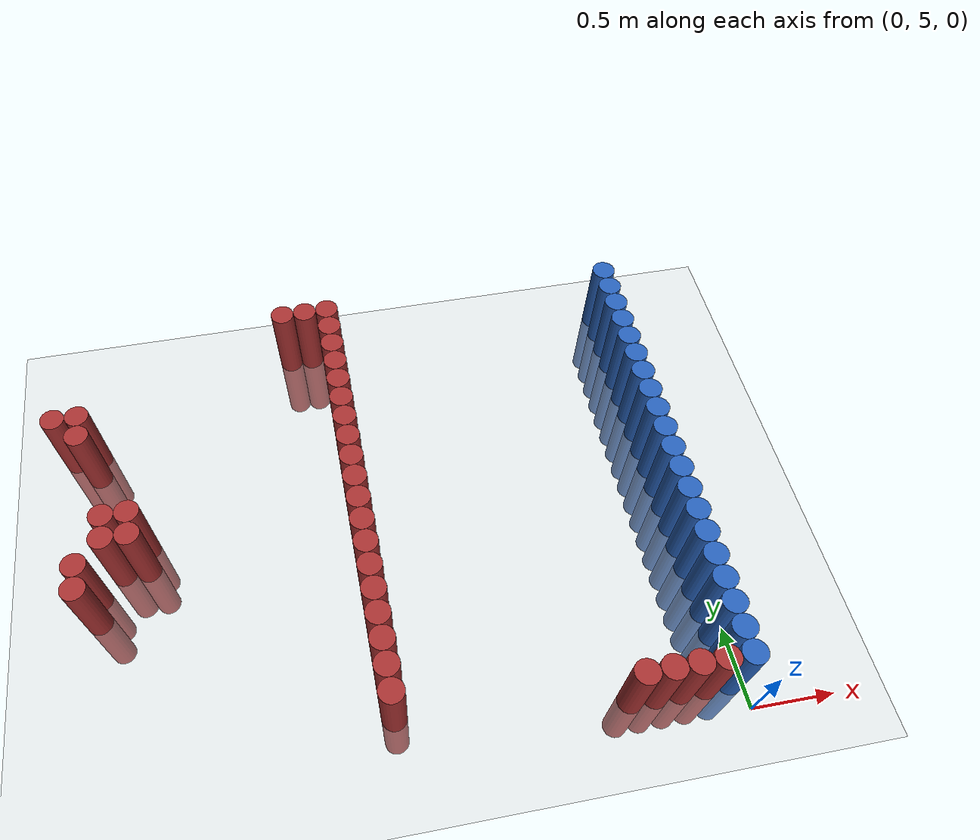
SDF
<sdf version="1.6">
 <world name="default">
  <model name="ground_plane">
   <static>1</static>
   <link name="link">
    <collision name="collision">
     <geometry><plane><normal>0 0 1</normal><size>100 100</size></plane></geometry>
     <surface><friction><ode><mu>100</mu><mu2>50</mu2></ode></friction></surface>
    </collision>
    <visual name="visual">
     <cast_shadows>0</cast_shadows>
     <geometry><plane><normal>0 0 1</normal><size>100 100</size></plane></geometry>
     <material>
      <script><uri>file://media/materials/scripts/gazebo.material</uri><name>Gazebo/Grey</name></script>
     </material>
    </visual>
   </link>
  </model>
  <model name="unit_cylinder_259">
   <static>1</static>
   <pose>-3.825000 7.425000 0.000000 0.000000 0.000000 0.000000</pose>
   <link name="link">
    <inertial>
     <mass>1</mass>
     <inertia><ixx>0.145833</ixx><ixy>0</ixy><ixz>0</ixz><iyy>0.145833</iyy><iyz>0</iyz><izz>0.125</izz></inertia>
    </inertial>
    <collision name="collision">
     <geometry><cylinder><radius>0.075000</radius><length>1</length></cylinder></geometry>
    </collision>
    <visual name="visual">
     <geometry><cylinder><radius>0.075000</radius><length>1</length></cylinder></geometry>
     <material>
      <ambient>0.648000 0.192000 0.192000 1</ambient>
      <diffuse>0.648000 0.192000 0.192000 1</diffuse>
     </material>
     <material>
      <script><name>Gazebo/Grey</name><uri>file://media/materials/scripts/gazebo.material</uri></script>
     </material>
    </visual>
   </link>
  </model>
  <model name="unit_cylinder_263">
   <static>1</static>
   <pose>-3.675000 6.225000 0.000000 0.000000 0.000000 0.000000</pose>
   <link name="link">
    <inertial>
     <mass>1</mass>
     <inertia><ixx>0.145833</ixx><ixy>0</ixy><ixz>0</ixz><iyy>0.145833</iyy><iyz>0</iyz><izz>0.125</izz></inertia>
    </inertial>
    <collision name="collision">
     <geometry><cylinder><radius>0.075000</radius><length>1</length></cylinder></geometry>
    </collision>
    <visual name="visual">
     <geometry><cylinder><radius>0.075000</radius><length>1</length></cylinder></geometry>
     <material>
      <ambient>0.648000 0.192000 0.192000 1</ambient>
      <diffuse>0.648000 0.192000 0.192000 1</diffuse>
     </material>
     <material>
      <script><name>Gazebo/Grey</name><uri>file://media/materials/scripts/gazebo.material</uri></script>
     </material>
    </visual>
   </link>
  </model>
  <model name="unit_cylinder_264">
   <static>1</static>
   <pose>-3.675000 6.375000 0.000000 0.000000 0.000000 0.000000</pose>
   <link name="link">
    <inertial>
     <mass>1</mass>
     <inertia><ixx>0.145833</ixx><ixy>0</ixy><ixz>0</ixz><iyy>0.145833</iyy><iyz>0</iyz><izz>0.125</izz></inertia>
    </inertial>
    <collision name="collision">
     <geometry><cylinder><radius>0.075000</radius><length>1</length></cylinder></geometry>
    </collision>
    <visual name="visual">
     <geometry><cylinder><radius>0.075000</radius><length>1</length></cylinder></geometry>
     <material>
      <ambient>0.648000 0.192000 0.192000 1</ambient>
      <diffuse>0.648000 0.192000 0.192000 1</diffuse>
     </material>
     <material>
      <script><name>Gazebo/Grey</name><uri>file://media/materials/scripts/gazebo.material</uri></script>
     </material>
    </visual>
   </link>
  </model>
  <model name="unit_cylinder_265">
   <static>1</static>
   <pose>-3.675000 7.275000 0.000000 0.000000 0.000000 0.000000</pose>
   <link name="link">
    <inertial>
     <mass>1</mass>
     <inertia><ixx>0.145833</ixx><ixy>0</ixy><ixz>0</ixz><iyy>0.145833</iyy><iyz>0</iyz><izz>0.125</izz></inertia>
    </inertial>
    <collision name="collision">
     <geometry><cylinder><radius>0.075000</radius><length>1</length></cylinder></geometry>
    </collision>
    <visual name="visual">
     <geometry><cylinder><radius>0.075000</radius><length>1</length></cylinder></geometry>
     <material>
      <ambient>0.648000 0.192000 0.192000 1</ambient>
      <diffuse>0.648000 0.192000 0.192000 1</diffuse>
     </material>
     <material>
      <script><name>Gazebo/Grey</name><uri>file://media/materials/scripts/gazebo.material</uri></script>
     </material>
    </visual>
   </link>
  </model>
  <model name="unit_cylinder_266">
   <static>1</static>
   <pose>-3.675000 7.425000 0.000000 0.000000 0.000000 0.000000</pose>
   <link name="link">
    <inertial>
     <mass>1</mass>
     <inertia><ixx>0.145833</ixx><ixy>0</ixy><ixz>0</ixz><iyy>0.145833</iyy><iyz>0</iyz><izz>0.125</izz></inertia>
    </inertial>
    <collision name="collision">
     <geometry><cylinder><radius>0.075000</radius><length>1</length></cylinder></geometry>
    </collision>
    <visual name="visual">
     <geometry><cylinder><radius>0.075000</radius><length>1</length></cylinder></geometry>
     <material>
      <ambient>0.648000 0.192000 0.192000 1</ambient>
      <diffuse>0.648000 0.192000 0.192000 1</diffuse>
     </material>
     <material>
      <script><name>Gazebo/Grey</name><uri>file://media/materials/scripts/gazebo.material</uri></script>
     </material>
    </visual>
   </link>
  </model>
  <model name="unit_cylinder_272">
   <static>1</static>
   <pose>-3.525000 6.525000 0.000000 0.000000 0.000000 0.000000</pose>
   <link name="link">
    <inertial>
     <mass>1</mass>
     <inertia><ixx>0.145833</ixx><ixy>0</ixy><ixz>0</ixz><iyy>0.145833</iyy><iyz>0</iyz><izz>0.125</izz></inertia>
    </inertial>
    <collision name="collision">
     <geometry><cylinder><radius>0.075000</radius><length>1</length></cylinder></geometry>
    </collision>
    <visual name="visual">
     <geometry><cylinder><radius>0.075000</radius><length>1</length></cylinder></geometry>
     <material>
      <ambient>0.648000 0.192000 0.192000 1</ambient>
      <diffuse>0.648000 0.192000 0.192000 1</diffuse>
     </material>
     <material>
      <script><name>Gazebo/Grey</name><uri>file://media/materials/scripts/gazebo.material</uri></script>
     </material>
    </visual>
   </link>
  </model>
  <model name="unit_cylinder_273">
   <static>1</static>
   <pose>-3.525000 6.675000 0.000000 0.000000 0.000000 0.000000</pose>
   <link name="link">
    <inertial>
     <mass>1</mass>
     <inertia><ixx>0.145833</ixx><ixy>0</ixy><ixz>0</ixz><iyy>0.145833</iyy><iyz>0</iyz><izz>0.125</izz></inertia>
    </inertial>
    <collision name="collision">
     <geometry><cylinder><radius>0.075000</radius><length>1</length></cylinder></geometry>
    </collision>
    <visual name="visual">
     <geometry><cylinder><radius>0.075000</radius><length>1</length></cylinder></geometry>
     <material>
      <ambient>0.648000 0.192000 0.192000 1</ambient>
      <diffuse>0.648000 0.192000 0.192000 1</diffuse>
     </material>
     <material>
      <script><name>Gazebo/Grey</name><uri>file://media/materials/scripts/gazebo.material</uri></script>
     </material>
    </visual>
   </link>
  </model>
  <model name="unit_cylinder_276">
   <static>1</static>
   <pose>-3.375000 6.525000 0.000000 0.000000 0.000000 0.000000</pose>
   <link name="link">
    <inertial>
     <mass>1</mass>
     <inertia><ixx>0.145833</ixx><ixy>0</ixy><ixz>0</ixz><iyy>0.145833</iyy><iyz>0</iyz><izz>0.125</izz></inertia>
    </inertial>
    <collision name="collision">
     <geometry><cylinder><radius>0.075000</radius><length>1</length></cylinder></geometry>
    </collision>
    <visual name="visual">
     <geometry><cylinder><radius>0.075000</radius><length>1</length></cylinder></geometry>
     <material>
      <ambient>0.648000 0.192000 0.192000 1</ambient>
      <diffuse>0.648000 0.192000 0.192000 1</diffuse>
     </material>
     <material>
      <script><name>Gazebo/Grey</name><uri>file://media/materials/scripts/gazebo.material</uri></script>
     </material>
    </visual>
   </link>
  </model>
  <model name="unit_cylinder_277">
   <static>1</static>
   <pose>-3.375000 6.675000 0.000000 0.000000 0.000000 0.000000</pose>
   <link name="link">
    <inertial>
     <mass>1</mass>
     <inertia><ixx>0.145833</ixx><ixy>0</ixy><ixz>0</ixz><iyy>0.145833</iyy><iyz>0</iyz><izz>0.125</izz></inertia>
    </inertial>
    <collision name="collision">
     <geometry><cylinder><radius>0.075000</radius><length>1</length></cylinder></geometry>
    </collision>
    <visual name="visual">
     <geometry><cylinder><radius>0.075000</radius><length>1</length></cylinder></geometry>
     <material>
      <ambient>0.648000 0.192000 0.192000 1</ambient>
      <diffuse>0.648000 0.192000 0.192000 1</diffuse>
     </material>
     <material>
      <script><name>Gazebo/Grey</name><uri>file://media/materials/scripts/gazebo.material</uri></script>
     </material>
    </visual>
   </link>
  </model>
  <model name="unit_cylinder_293">
   <static>1</static>
   <pose>-2.325000 8.025000 0.000000 0.000000 0.000000 0.000000</pose>
   <link name="link">
    <inertial>
     <mass>1</mass>
     <inertia><ixx>0.145833</ixx><ixy>0</ixy><ixz>0</ixz><iyy>0.145833</iyy><iyz>0</iyz><izz>0.125</izz></inertia>
    </inertial>
    <collision name="collision">
     <geometry><cylinder><radius>0.075000</radius><length>1</length></cylinder></geometry>
    </collision>
    <visual name="visual">
     <geometry><cylinder><radius>0.075000</radius><length>1</length></cylinder></geometry>
     <material>
      <ambient>0.648000 0.192000 0.192000 1</ambient>
      <diffuse>0.648000 0.192000 0.192000 1</diffuse>
     </material>
     <material>
      <script><name>Gazebo/Grey</name><uri>file://media/materials/scripts/gazebo.material</uri></script>
     </material>
    </visual>
   </link>
  </model>
  <model name="unit_cylinder_301">
   <static>1</static>
   <pose>-2.175000 8.025000 0.000000 0.000000 0.000000 0.000000</pose>
   <link name="link">
    <inertial>
     <mass>1</mass>
     <inertia><ixx>0.145833</ixx><ixy>0</ixy><ixz>0</ixz><iyy>0.145833</iyy><iyz>0</iyz><izz>0.125</izz></inertia>
    </inertial>
    <collision name="collision">
     <geometry><cylinder><radius>0.075000</radius><length>1</length></cylinder></geometry>
    </collision>
    <visual name="visual">
     <geometry><cylinder><radius>0.075000</radius><length>1</length></cylinder></geometry>
     <material>
      <ambient>0.648000 0.192000 0.192000 1</ambient>
      <diffuse>0.648000 0.192000 0.192000 1</diffuse>
     </material>
     <material>
      <script><name>Gazebo/Grey</name><uri>file://media/materials/scripts/gazebo.material</uri></script>
     </material>
    </visual>
   </link>
  </model>
  <model name="unit_cylinder_304">
   <static>1</static>
   <pose>-2.025000 5.325000 0.000000 0.000000 0.000000 0.000000</pose>
   <link name="link">
    <inertial>
     <mass>1</mass>
     <inertia><ixx>0.145833</ixx><ixy>0</ixy><ixz>0</ixz><iyy>0.145833</iyy><iyz>0</iyz><izz>0.125</izz></inertia>
    </inertial>
    <collision name="collision">
     <geometry><cylinder><radius>0.075000</radius><length>1</length></cylinder></geometry>
    </collision>
    <visual name="visual">
     <geometry><cylinder><radius>0.075000</radius><length>1</length></cylinder></geometry>
     <material>
      <ambient>0.648000 0.192000 0.192000 1</ambient>
      <diffuse>0.648000 0.192000 0.192000 1</diffuse>
     </material>
     <material>
      <script><name>Gazebo/Grey</name><uri>file://media/materials/scripts/gazebo.material</uri></script>
     </material>
    </visual>
   </link>
  </model>
  <model name="unit_cylinder_305">
   <static>1</static>
   <pose>-2.025000 5.475000 0.000000 0.000000 0.000000 0.000000</pose>
   <link name="link">
    <inertial>
     <mass>1</mass>
     <inertia><ixx>0.145833</ixx><ixy>0</ixy><ixz>0</ixz><iyy>0.145833</iyy><iyz>0</iyz><izz>0.125</izz></inertia>
    </inertial>
    <collision name="collision">
     <geometry><cylinder><radius>0.075000</radius><length>1</length></cylinder></geometry>
    </collision>
    <visual name="visual">
     <geometry><cylinder><radius>0.075000</radius><length>1</length></cylinder></geometry>
     <material>
      <ambient>0.648000 0.192000 0.192000 1</ambient>
      <diffuse>0.648000 0.192000 0.192000 1</diffuse>
     </material>
     <material>
      <script><name>Gazebo/Grey</name><uri>file://media/materials/scripts/gazebo.material</uri></script>
     </material>
    </visual>
   </link>
  </model>
  <model name="unit_cylinder_306">
   <static>1</static>
   <pose>-2.025000 5.625000 0.000000 0.000000 0.000000 0.000000</pose>
   <link name="link">
    <inertial>
     <mass>1</mass>
     <inertia><ixx>0.145833</ixx><ixy>0</ixy><ixz>0</ixz><iyy>0.145833</iyy><iyz>0</iyz><izz>0.125</izz></inertia>
    </inertial>
    <collision name="collision">
     <geometry><cylinder><radius>0.075000</radius><length>1</length></cylinder></geometry>
    </collision>
    <visual name="visual">
     <geometry><cylinder><radius>0.075000</radius><length>1</length></cylinder></geometry>
     <material>
      <ambient>0.648000 0.192000 0.192000 1</ambient>
      <diffuse>0.648000 0.192000 0.192000 1</diffuse>
     </material>
     <material>
      <script><name>Gazebo/Grey</name><uri>file://media/materials/scripts/gazebo.material</uri></script>
     </material>
    </visual>
   </link>
  </model>
  <model name="unit_cylinder_307">
   <static>1</static>
   <pose>-2.025000 5.775000 0.000000 0.000000 0.000000 0.000000</pose>
   <link name="link">
    <inertial>
     <mass>1</mass>
     <inertia><ixx>0.145833</ixx><ixy>0</ixy><ixz>0</ixz><iyy>0.145833</iyy><iyz>0</iyz><izz>0.125</izz></inertia>
    </inertial>
    <collision name="collision">
     <geometry><cylinder><radius>0.075000</radius><length>1</length></cylinder></geometry>
    </collision>
    <visual name="visual">
     <geometry><cylinder><radius>0.075000</radius><length>1</length></cylinder></geometry>
     <material>
      <ambient>0.648000 0.192000 0.192000 1</ambient>
      <diffuse>0.648000 0.192000 0.192000 1</diffuse>
     </material>
     <material>
      <script><name>Gazebo/Grey</name><uri>file://media/materials/scripts/gazebo.material</uri></script>
     </material>
    </visual>
   </link>
  </model>
  <model name="unit_cylinder_308">
   <static>1</static>
   <pose>-2.025000 5.925000 0.000000 0.000000 0.000000 0.000000</pose>
   <link name="link">
    <inertial>
     <mass>1</mass>
     <inertia><ixx>0.145833</ixx><ixy>0</ixy><ixz>0</ixz><iyy>0.145833</iyy><iyz>0</iyz><izz>0.125</izz></inertia>
    </inertial>
    <collision name="collision">
     <geometry><cylinder><radius>0.075000</radius><length>1</length></cylinder></geometry>
    </collision>
    <visual name="visual">
     <geometry><cylinder><radius>0.075000</radius><length>1</length></cylinder></geometry>
     <material>
      <ambient>0.648000 0.192000 0.192000 1</ambient>
      <diffuse>0.648000 0.192000 0.192000 1</diffuse>
     </material>
     <material>
      <script><name>Gazebo/Grey</name><uri>file://media/materials/scripts/gazebo.material</uri></script>
     </material>
    </visual>
   </link>
  </model>
  <model name="unit_cylinder_309">
   <static>1</static>
   <pose>-2.025000 6.075000 0.000000 0.000000 0.000000 0.000000</pose>
   <link name="link">
    <inertial>
     <mass>1</mass>
     <inertia><ixx>0.145833</ixx><ixy>0</ixy><ixz>0</ixz><iyy>0.145833</iyy><iyz>0</iyz><izz>0.125</izz></inertia>
    </inertial>
    <collision name="collision">
     <geometry><cylinder><radius>0.075000</radius><length>1</length></cylinder></geometry>
    </collision>
    <visual name="visual">
     <geometry><cylinder><radius>0.075000</radius><length>1</length></cylinder></geometry>
     <material>
      <ambient>0.648000 0.192000 0.192000 1</ambient>
      <diffuse>0.648000 0.192000 0.192000 1</diffuse>
     </material>
     <material>
      <script><name>Gazebo/Grey</name><uri>file://media/materials/scripts/gazebo.material</uri></script>
     </material>
    </visual>
   </link>
  </model>
  <model name="unit_cylinder_310">
   <static>1</static>
   <pose>-2.025000 6.225000 0.000000 0.000000 0.000000 0.000000</pose>
   <link name="link">
    <inertial>
     <mass>1</mass>
     <inertia><ixx>0.145833</ixx><ixy>0</ixy><ixz>0</ixz><iyy>0.145833</iyy><iyz>0</iyz><izz>0.125</izz></inertia>
    </inertial>
    <collision name="collision">
     <geometry><cylinder><radius>0.075000</radius><length>1</length></cylinder></geometry>
    </collision>
    <visual name="visual">
     <geometry><cylinder><radius>0.075000</radius><length>1</length></cylinder></geometry>
     <material>
      <ambient>0.648000 0.192000 0.192000 1</ambient>
      <diffuse>0.648000 0.192000 0.192000 1</diffuse>
     </material>
     <material>
      <script><name>Gazebo/Grey</name><uri>file://media/materials/scripts/gazebo.material</uri></script>
     </material>
    </visual>
   </link>
  </model>
  <model name="unit_cylinder_311">
   <static>1</static>
   <pose>-2.025000 6.375000 0.000000 0.000000 0.000000 0.000000</pose>
   <link name="link">
    <inertial>
     <mass>1</mass>
     <inertia><ixx>0.145833</ixx><ixy>0</ixy><ixz>0</ixz><iyy>0.145833</iyy><iyz>0</iyz><izz>0.125</izz></inertia>
    </inertial>
    <collision name="collision">
     <geometry><cylinder><radius>0.075000</radius><length>1</length></cylinder></geometry>
    </collision>
    <visual name="visual">
     <geometry><cylinder><radius>0.075000</radius><length>1</length></cylinder></geometry>
     <material>
      <ambient>0.648000 0.192000 0.192000 1</ambient>
      <diffuse>0.648000 0.192000 0.192000 1</diffuse>
     </material>
     <material>
      <script><name>Gazebo/Grey</name><uri>file://media/materials/scripts/gazebo.material</uri></script>
     </material>
    </visual>
   </link>
  </model>
  <model name="unit_cylinder_312">
   <static>1</static>
   <pose>-2.025000 6.525000 0.000000 0.000000 0.000000 0.000000</pose>
   <link name="link">
    <inertial>
     <mass>1</mass>
     <inertia><ixx>0.145833</ixx><ixy>0</ixy><ixz>0</ixz><iyy>0.145833</iyy><iyz>0</iyz><izz>0.125</izz></inertia>
    </inertial>
    <collision name="collision">
     <geometry><cylinder><radius>0.075000</radius><length>1</length></cylinder></geometry>
    </collision>
    <visual name="visual">
     <geometry><cylinder><radius>0.075000</radius><length>1</length></cylinder></geometry>
     <material>
      <ambient>0.648000 0.192000 0.192000 1</ambient>
      <diffuse>0.648000 0.192000 0.192000 1</diffuse>
     </material>
     <material>
      <script><name>Gazebo/Grey</name><uri>file://media/materials/scripts/gazebo.material</uri></script>
     </material>
    </visual>
   </link>
  </model>
  <model name="unit_cylinder_313">
   <static>1</static>
   <pose>-2.025000 6.675000 0.000000 0.000000 0.000000 0.000000</pose>
   <link name="link">
    <inertial>
     <mass>1</mass>
     <inertia><ixx>0.145833</ixx><ixy>0</ixy><ixz>0</ixz><iyy>0.145833</iyy><iyz>0</iyz><izz>0.125</izz></inertia>
    </inertial>
    <collision name="collision">
     <geometry><cylinder><radius>0.075000</radius><length>1</length></cylinder></geometry>
    </collision>
    <visual name="visual">
     <geometry><cylinder><radius>0.075000</radius><length>1</length></cylinder></geometry>
     <material>
      <ambient>0.648000 0.192000 0.192000 1</ambient>
      <diffuse>0.648000 0.192000 0.192000 1</diffuse>
     </material>
     <material>
      <script><name>Gazebo/Grey</name><uri>file://media/materials/scripts/gazebo.material</uri></script>
     </material>
    </visual>
   </link>
  </model>
  <model name="unit_cylinder_314">
   <static>1</static>
   <pose>-2.025000 6.825000 0.000000 0.000000 0.000000 0.000000</pose>
   <link name="link">
    <inertial>
     <mass>1</mass>
     <inertia><ixx>0.145833</ixx><ixy>0</ixy><ixz>0</ixz><iyy>0.145833</iyy><iyz>0</iyz><izz>0.125</izz></inertia>
    </inertial>
    <collision name="collision">
     <geometry><cylinder><radius>0.075000</radius><length>1</length></cylinder></geometry>
    </collision>
    <visual name="visual">
     <geometry><cylinder><radius>0.075000</radius><length>1</length></cylinder></geometry>
     <material>
      <ambient>0.648000 0.192000 0.192000 1</ambient>
      <diffuse>0.648000 0.192000 0.192000 1</diffuse>
     </material>
     <material>
      <script><name>Gazebo/Grey</name><uri>file://media/materials/scripts/gazebo.material</uri></script>
     </material>
    </visual>
   </link>
  </model>
  <model name="unit_cylinder_315">
   <static>1</static>
   <pose>-2.025000 6.975000 0.000000 0.000000 0.000000 0.000000</pose>
   <link name="link">
    <inertial>
     <mass>1</mass>
     <inertia><ixx>0.145833</ixx><ixy>0</ixy><ixz>0</ixz><iyy>0.145833</iyy><iyz>0</iyz><izz>0.125</izz></inertia>
    </inertial>
    <collision name="collision">
     <geometry><cylinder><radius>0.075000</radius><length>1</length></cylinder></geometry>
    </collision>
    <visual name="visual">
     <geometry><cylinder><radius>0.075000</radius><length>1</length></cylinder></geometry>
     <material>
      <ambient>0.648000 0.192000 0.192000 1</ambient>
      <diffuse>0.648000 0.192000 0.192000 1</diffuse>
     </material>
     <material>
      <script><name>Gazebo/Grey</name><uri>file://media/materials/scripts/gazebo.material</uri></script>
     </material>
    </visual>
   </link>
  </model>
  <model name="unit_cylinder_316">
   <static>1</static>
   <pose>-2.025000 7.125000 0.000000 0.000000 0.000000 0.000000</pose>
   <link name="link">
    <inertial>
     <mass>1</mass>
     <inertia><ixx>0.145833</ixx><ixy>0</ixy><ixz>0</ixz><iyy>0.145833</iyy><iyz>0</iyz><izz>0.125</izz></inertia>
    </inertial>
    <collision name="collision">
     <geometry><cylinder><radius>0.075000</radius><length>1</length></cylinder></geometry>
    </collision>
    <visual name="visual">
     <geometry><cylinder><radius>0.075000</radius><length>1</length></cylinder></geometry>
     <material>
      <ambient>0.648000 0.192000 0.192000 1</ambient>
      <diffuse>0.648000 0.192000 0.192000 1</diffuse>
     </material>
     <material>
      <script><name>Gazebo/Grey</name><uri>file://media/materials/scripts/gazebo.material</uri></script>
     </material>
    </visual>
   </link>
  </model>
  <model name="unit_cylinder_317">
   <static>1</static>
   <pose>-2.025000 7.275000 0.000000 0.000000 0.000000 0.000000</pose>
   <link name="link">
    <inertial>
     <mass>1</mass>
     <inertia><ixx>0.145833</ixx><ixy>0</ixy><ixz>0</ixz><iyy>0.145833</iyy><iyz>0</iyz><izz>0.125</izz></inertia>
    </inertial>
    <collision name="collision">
     <geometry><cylinder><radius>0.075000</radius><length>1</length></cylinder></geometry>
    </collision>
    <visual name="visual">
     <geometry><cylinder><radius>0.075000</radius><length>1</length></cylinder></geometry>
     <material>
      <ambient>0.648000 0.192000 0.192000 1</ambient>
      <diffuse>0.648000 0.192000 0.192000 1</diffuse>
     </material>
     <material>
      <script><name>Gazebo/Grey</name><uri>file://media/materials/scripts/gazebo.material</uri></script>
     </material>
    </visual>
   </link>
  </model>
  <model name="unit_cylinder_318">
   <static>1</static>
   <pose>-2.025000 7.425000 0.000000 0.000000 0.000000 0.000000</pose>
   <link name="link">
    <inertial>
     <mass>1</mass>
     <inertia><ixx>0.145833</ixx><ixy>0</ixy><ixz>0</ixz><iyy>0.145833</iyy><iyz>0</iyz><izz>0.125</izz></inertia>
    </inertial>
    <collision name="collision">
     <geometry><cylinder><radius>0.075000</radius><length>1</length></cylinder></geometry>
    </collision>
    <visual name="visual">
     <geometry><cylinder><radius>0.075000</radius><length>1</length></cylinder></geometry>
     <material>
      <ambient>0.648000 0.192000 0.192000 1</ambient>
      <diffuse>0.648000 0.192000 0.192000 1</diffuse>
     </material>
     <material>
      <script><name>Gazebo/Grey</name><uri>file://media/materials/scripts/gazebo.material</uri></script>
     </material>
    </visual>
   </link>
  </model>
  <model name="unit_cylinder_319">
   <static>1</static>
   <pose>-2.025000 7.575000 0.000000 0.000000 0.000000 0.000000</pose>
   <link name="link">
    <inertial>
     <mass>1</mass>
     <inertia><ixx>0.145833</ixx><ixy>0</ixy><ixz>0</ixz><iyy>0.145833</iyy><iyz>0</iyz><izz>0.125</izz></inertia>
    </inertial>
    <collision name="collision">
     <geometry><cylinder><radius>0.075000</radius><length>1</length></cylinder></geometry>
    </collision>
    <visual name="visual">
     <geometry><cylinder><radius>0.075000</radius><length>1</length></cylinder></geometry>
     <material>
      <ambient>0.648000 0.192000 0.192000 1</ambient>
      <diffuse>0.648000 0.192000 0.192000 1</diffuse>
     </material>
     <material>
      <script><name>Gazebo/Grey</name><uri>file://media/materials/scripts/gazebo.material</uri></script>
     </material>
    </visual>
   </link>
  </model>
  <model name="unit_cylinder_320">
   <static>1</static>
   <pose>-2.025000 7.725000 0.000000 0.000000 0.000000 0.000000</pose>
   <link name="link">
    <inertial>
     <mass>1</mass>
     <inertia><ixx>0.145833</ixx><ixy>0</ixy><ixz>0</ixz><iyy>0.145833</iyy><iyz>0</iyz><izz>0.125</izz></inertia>
    </inertial>
    <collision name="collision">
     <geometry><cylinder><radius>0.075000</radius><length>1</length></cylinder></geometry>
    </collision>
    <visual name="visual">
     <geometry><cylinder><radius>0.075000</radius><length>1</length></cylinder></geometry>
     <material>
      <ambient>0.648000 0.192000 0.192000 1</ambient>
      <diffuse>0.648000 0.192000 0.192000 1</diffuse>
     </material>
     <material>
      <script><name>Gazebo/Grey</name><uri>file://media/materials/scripts/gazebo.material</uri></script>
     </material>
    </visual>
   </link>
  </model>
  <model name="unit_cylinder_321">
   <static>1</static>
   <pose>-2.025000 7.875000 0.000000 0.000000 0.000000 0.000000</pose>
   <link name="link">
    <inertial>
     <mass>1</mass>
     <inertia><ixx>0.145833</ixx><ixy>0</ixy><ixz>0</ixz><iyy>0.145833</iyy><iyz>0</iyz><izz>0.125</izz></inertia>
    </inertial>
    <collision name="collision">
     <geometry><cylinder><radius>0.075000</radius><length>1</length></cylinder></geometry>
    </collision>
    <visual name="visual">
     <geometry><cylinder><radius>0.075000</radius><length>1</length></cylinder></geometry>
     <material>
      <ambient>0.648000 0.192000 0.192000 1</ambient>
      <diffuse>0.648000 0.192000 0.192000 1</diffuse>
     </material>
     <material>
      <script><name>Gazebo/Grey</name><uri>file://media/materials/scripts/gazebo.material</uri></script>
     </material>
    </visual>
   </link>
  </model>
  <model name="unit_cylinder_322">
   <static>1</static>
   <pose>-2.025000 8.025000 0.000000 0.000000 0.000000 0.000000</pose>
   <link name="link">
    <inertial>
     <mass>1</mass>
     <inertia><ixx>0.145833</ixx><ixy>0</ixy><ixz>0</ixz><iyy>0.145833</iyy><iyz>0</iyz><izz>0.125</izz></inertia>
    </inertial>
    <collision name="collision">
     <geometry><cylinder><radius>0.075000</radius><length>1</length></cylinder></geometry>
    </collision>
    <visual name="visual">
     <geometry><cylinder><radius>0.075000</radius><length>1</length></cylinder></geometry>
     <material>
      <ambient>0.648000 0.192000 0.192000 1</ambient>
      <diffuse>0.648000 0.192000 0.192000 1</diffuse>
     </material>
     <material>
      <script><name>Gazebo/Grey</name><uri>file://media/materials/scripts/gazebo.material</uri></script>
     </material>
    </visual>
   </link>
  </model>
  <model name="unit_cylinder_340">
   <static>1</static>
   <pose>-0.675000 5.175000 0.000000 0.000000 0.000000 0.000000</pose>
   <link name="link">
    <inertial>
     <mass>1</mass>
     <inertia><ixx>0.145833</ixx><ixy>0</ixy><ixz>0</ixz><iyy>0.145833</iyy><iyz>0</iyz><izz>0.125</izz></inertia>
    </inertial>
    <collision name="collision">
     <geometry><cylinder><radius>0.075000</radius><length>1</length></cylinder></geometry>
    </collision>
    <visual name="visual">
     <geometry><cylinder><radius>0.075000</radius><length>1</length></cylinder></geometry>
     <material>
      <ambient>0.648000 0.192000 0.192000 1</ambient>
      <diffuse>0.648000 0.192000 0.192000 1</diffuse>
     </material>
     <material>
      <script><name>Gazebo/Grey</name><uri>file://media/materials/scripts/gazebo.material</uri></script>
     </material>
    </visual>
   </link>
  </model>
  <model name="unit_cylinder_342">
   <static>1</static>
   <pose>-0.525000 5.175000 0.000000 0.000000 0.000000 0.000000</pose>
   <link name="link">
    <inertial>
     <mass>1</mass>
     <inertia><ixx>0.145833</ixx><ixy>0</ixy><ixz>0</ixz><iyy>0.145833</iyy><iyz>0</iyz><izz>0.125</izz></inertia>
    </inertial>
    <collision name="collision">
     <geometry><cylinder><radius>0.075000</radius><length>1</length></cylinder></geometry>
    </collision>
    <visual name="visual">
     <geometry><cylinder><radius>0.075000</radius><length>1</length></cylinder></geometry>
     <material>
      <ambient>0.648000 0.192000 0.192000 1</ambient>
      <diffuse>0.648000 0.192000 0.192000 1</diffuse>
     </material>
     <material>
      <script><name>Gazebo/Grey</name><uri>file://media/materials/scripts/gazebo.material</uri></script>
     </material>
    </visual>
   </link>
  </model>
  <model name="unit_cylinder_344">
   <static>1</static>
   <pose>-0.375000 5.175000 0.000000 0.000000 0.000000 0.000000</pose>
   <link name="link">
    <inertial>
     <mass>1</mass>
     <inertia><ixx>0.145833</ixx><ixy>0</ixy><ixz>0</ixz><iyy>0.145833</iyy><iyz>0</iyz><izz>0.125</izz></inertia>
    </inertial>
    <collision name="collision">
     <geometry><cylinder><radius>0.075000</radius><length>1</length></cylinder></geometry>
    </collision>
    <visual name="visual">
     <geometry><cylinder><radius>0.075000</radius><length>1</length></cylinder></geometry>
     <material>
      <ambient>0.648000 0.192000 0.192000 1</ambient>
      <diffuse>0.648000 0.192000 0.192000 1</diffuse>
     </material>
     <material>
      <script><name>Gazebo/Grey</name><uri>file://media/materials/scripts/gazebo.material</uri></script>
     </material>
    </visual>
   </link>
  </model>
  <model name="unit_cylinder_346">
   <static>1</static>
   <pose>-0.225000 5.175000 0.000000 0.000000 0.000000 0.000000</pose>
   <link name="link">
    <inertial>
     <mass>1</mass>
     <inertia><ixx>0.145833</ixx><ixy>0</ixy><ixz>0</ixz><iyy>0.145833</iyy><iyz>0</iyz><izz>0.125</izz></inertia>
    </inertial>
    <collision name="collision">
     <geometry><cylinder><radius>0.075000</radius><length>1</length></cylinder></geometry>
    </collision>
    <visual name="visual">
     <geometry><cylinder><radius>0.075000</radius><length>1</length></cylinder></geometry>
     <material>
      <ambient>0.648000 0.192000 0.192000 1</ambient>
      <diffuse>0.648000 0.192000 0.192000 1</diffuse>
     </material>
     <material>
      <script><name>Gazebo/Grey</name><uri>file://media/materials/scripts/gazebo.material</uri></script>
     </material>
    </visual>
   </link>
  </model>
  <model name="unit_cylinder_348">
   <static>1</static>
   <pose>-0.075000 5.175000 0.000000 0.000000 0.000000 0.000000</pose>
   <link name="link">
    <inertial>
     <mass>1</mass>
     <inertia><ixx>0.145833</ixx><ixy>0</ixy><ixz>0</ixz><iyy>0.145833</iyy><iyz>0</iyz><izz>0.125</izz></inertia>
    </inertial>
    <collision name="collision">
     <geometry><cylinder><radius>0.075000</radius><length>1</length></cylinder></geometry>
    </collision>
    <visual name="visual">
     <geometry><cylinder><radius>0.075000</radius><length>1</length></cylinder></geometry>
     <material>
      <ambient>0.152000 0.379000 0.720000 1</ambient>
      <diffuse>0.152000 0.379000 0.720000 1</diffuse>
     </material>
     <material>
      <script><name>Gazebo/Grey</name><uri>file://media/materials/scripts/gazebo.material</uri></script>
     </material>
    </visual>
   </link>
  </model>
  <model name="unit_cylinder_349">
   <static>1</static>
   <pose>-0.075000 5.325000 0.000000 0.000000 0.000000 0.000000</pose>
   <link name="link">
    <inertial>
     <mass>1</mass>
     <inertia><ixx>0.145833</ixx><ixy>0</ixy><ixz>0</ixz><iyy>0.145833</iyy><iyz>0</iyz><izz>0.125</izz></inertia>
    </inertial>
    <collision name="collision">
     <geometry><cylinder><radius>0.075000</radius><length>1</length></cylinder></geometry>
    </collision>
    <visual name="visual">
     <geometry><cylinder><radius>0.075000</radius><length>1</length></cylinder></geometry>
     <material>
      <ambient>0.152000 0.379000 0.720000 1</ambient>
      <diffuse>0.152000 0.379000 0.720000 1</diffuse>
     </material>
     <material>
      <script><name>Gazebo/Grey</name><uri>file://media/materials/scripts/gazebo.material</uri></script>
     </material>
    </visual>
   </link>
  </model>
  <model name="unit_cylinder_350">
   <static>1</static>
   <pose>-0.075000 5.475000 0.000000 0.000000 0.000000 0.000000</pose>
   <link name="link">
    <inertial>
     <mass>1</mass>
     <inertia><ixx>0.145833</ixx><ixy>0</ixy><ixz>0</ixz><iyy>0.145833</iyy><iyz>0</iyz><izz>0.125</izz></inertia>
    </inertial>
    <collision name="collision">
     <geometry><cylinder><radius>0.075000</radius><length>1</length></cylinder></geometry>
    </collision>
    <visual name="visual">
     <geometry><cylinder><radius>0.075000</radius><length>1</length></cylinder></geometry>
     <material>
      <ambient>0.152000 0.379000 0.720000 1</ambient>
      <diffuse>0.152000 0.379000 0.720000 1</diffuse>
     </material>
     <material>
      <script><name>Gazebo/Grey</name><uri>file://media/materials/scripts/gazebo.material</uri></script>
     </material>
    </visual>
   </link>
  </model>
  <model name="unit_cylinder_351">
   <static>1</static>
   <pose>-0.075000 5.625000 0.000000 0.000000 0.000000 0.000000</pose>
   <link name="link">
    <inertial>
     <mass>1</mass>
     <inertia><ixx>0.145833</ixx><ixy>0</ixy><ixz>0</ixz><iyy>0.145833</iyy><iyz>0</iyz><izz>0.125</izz></inertia>
    </inertial>
    <collision name="collision">
     <geometry><cylinder><radius>0.075000</radius><length>1</length></cylinder></geometry>
    </collision>
    <visual name="visual">
     <geometry><cylinder><radius>0.075000</radius><length>1</length></cylinder></geometry>
     <material>
      <ambient>0.152000 0.379000 0.720000 1</ambient>
      <diffuse>0.152000 0.379000 0.720000 1</diffuse>
     </material>
     <material>
      <script><name>Gazebo/Grey</name><uri>file://media/materials/scripts/gazebo.material</uri></script>
     </material>
    </visual>
   </link>
  </model>
  <model name="unit_cylinder_352">
   <static>1</static>
   <pose>-0.075000 5.775000 0.000000 0.000000 0.000000 0.000000</pose>
   <link name="link">
    <inertial>
     <mass>1</mass>
     <inertia><ixx>0.145833</ixx><ixy>0</ixy><ixz>0</ixz><iyy>0.145833</iyy><iyz>0</iyz><izz>0.125</izz></inertia>
    </inertial>
    <collision name="collision">
     <geometry><cylinder><radius>0.075000</radius><length>1</length></cylinder></geometry>
    </collision>
    <visual name="visual">
     <geometry><cylinder><radius>0.075000</radius><length>1</length></cylinder></geometry>
     <material>
      <ambient>0.152000 0.379000 0.720000 1</ambient>
      <diffuse>0.152000 0.379000 0.720000 1</diffuse>
     </material>
     <material>
      <script><name>Gazebo/Grey</name><uri>file://media/materials/scripts/gazebo.material</uri></script>
     </material>
    </visual>
   </link>
  </model>
  <model name="unit_cylinder_353">
   <static>1</static>
   <pose>-0.075000 5.925000 0.000000 0.000000 0.000000 0.000000</pose>
   <link name="link">
    <inertial>
     <mass>1</mass>
     <inertia><ixx>0.145833</ixx><ixy>0</ixy><ixz>0</ixz><iyy>0.145833</iyy><iyz>0</iyz><izz>0.125</izz></inertia>
    </inertial>
    <collision name="collision">
     <geometry><cylinder><radius>0.075000</radius><length>1</length></cylinder></geometry>
    </collision>
    <visual name="visual">
     <geometry><cylinder><radius>0.075000</radius><length>1</length></cylinder></geometry>
     <material>
      <ambient>0.152000 0.379000 0.720000 1</ambient>
      <diffuse>0.152000 0.379000 0.720000 1</diffuse>
     </material>
     <material>
      <script><name>Gazebo/Grey</name><uri>file://media/materials/scripts/gazebo.material</uri></script>
     </material>
    </visual>
   </link>
  </model>
  <model name="unit_cylinder_354">
   <static>1</static>
   <pose>-0.075000 6.075000 0.000000 0.000000 0.000000 0.000000</pose>
   <link name="link">
    <inertial>
     <mass>1</mass>
     <inertia><ixx>0.145833</ixx><ixy>0</ixy><ixz>0</ixz><iyy>0.145833</iyy><iyz>0</iyz><izz>0.125</izz></inertia>
    </inertial>
    <collision name="collision">
     <geometry><cylinder><radius>0.075000</radius><length>1</length></cylinder></geometry>
    </collision>
    <visual name="visual">
     <geometry><cylinder><radius>0.075000</radius><length>1</length></cylinder></geometry>
     <material>
      <ambient>0.152000 0.379000 0.720000 1</ambient>
      <diffuse>0.152000 0.379000 0.720000 1</diffuse>
     </material>
     <material>
      <script><name>Gazebo/Grey</name><uri>file://media/materials/scripts/gazebo.material</uri></script>
     </material>
    </visual>
   </link>
  </model>
  <model name="unit_cylinder_355">
   <static>1</static>
   <pose>-0.075000 6.225000 0.000000 0.000000 0.000000 0.000000</pose>
   <link name="link">
    <inertial>
     <mass>1</mass>
     <inertia><ixx>0.145833</ixx><ixy>0</ixy><ixz>0</ixz><iyy>0.145833</iyy><iyz>0</iyz><izz>0.125</izz></inertia>
    </inertial>
    <collision name="collision">
     <geometry><cylinder><radius>0.075000</radius><length>1</length></cylinder></geometry>
    </collision>
    <visual name="visual">
     <geometry><cylinder><radius>0.075000</radius><length>1</length></cylinder></geometry>
     <material>
      <ambient>0.152000 0.379000 0.720000 1</ambient>
      <diffuse>0.152000 0.379000 0.720000 1</diffuse>
     </material>
     <material>
      <script><name>Gazebo/Grey</name><uri>file://media/materials/scripts/gazebo.material</uri></script>
     </material>
    </visual>
   </link>
  </model>
  <model name="unit_cylinder_356">
   <static>1</static>
   <pose>-0.075000 6.375000 0.000000 0.000000 0.000000 0.000000</pose>
   <link name="link">
    <inertial>
     <mass>1</mass>
     <inertia><ixx>0.145833</ixx><ixy>0</ixy><ixz>0</ixz><iyy>0.145833</iyy><iyz>0</iyz><izz>0.125</izz></inertia>
    </inertial>
    <collision name="collision">
     <geometry><cylinder><radius>0.075000</radius><length>1</length></cylinder></geometry>
    </collision>
    <visual name="visual">
     <geometry><cylinder><radius>0.075000</radius><length>1</length></cylinder></geometry>
     <material>
      <ambient>0.152000 0.379000 0.720000 1</ambient>
      <diffuse>0.152000 0.379000 0.720000 1</diffuse>
     </material>
     <material>
      <script><name>Gazebo/Grey</name><uri>file://media/materials/scripts/gazebo.material</uri></script>
     </material>
    </visual>
   </link>
  </model>
  <model name="unit_cylinder_357">
   <static>1</static>
   <pose>-0.075000 6.525000 0.000000 0.000000 0.000000 0.000000</pose>
   <link name="link">
    <inertial>
     <mass>1</mass>
     <inertia><ixx>0.145833</ixx><ixy>0</ixy><ixz>0</ixz><iyy>0.145833</iyy><iyz>0</iyz><izz>0.125</izz></inertia>
    </inertial>
    <collision name="collision">
     <geometry><cylinder><radius>0.075000</radius><length>1</length></cylinder></geometry>
    </collision>
    <visual name="visual">
     <geometry><cylinder><radius>0.075000</radius><length>1</length></cylinder></geometry>
     <material>
      <ambient>0.152000 0.379000 0.720000 1</ambient>
      <diffuse>0.152000 0.379000 0.720000 1</diffuse>
     </material>
     <material>
      <script><name>Gazebo/Grey</name><uri>file://media/materials/scripts/gazebo.material</uri></script>
     </material>
    </visual>
   </link>
  </model>
  <model name="unit_cylinder_358">
   <static>1</static>
   <pose>-0.075000 6.675000 0.000000 0.000000 0.000000 0.000000</pose>
   <link name="link">
    <inertial>
     <mass>1</mass>
     <inertia><ixx>0.145833</ixx><ixy>0</ixy><ixz>0</ixz><iyy>0.145833</iyy><iyz>0</iyz><izz>0.125</izz></inertia>
    </inertial>
    <collision name="collision">
     <geometry><cylinder><radius>0.075000</radius><length>1</length></cylinder></geometry>
    </collision>
    <visual name="visual">
     <geometry><cylinder><radius>0.075000</radius><length>1</length></cylinder></geometry>
     <material>
      <ambient>0.152000 0.379000 0.720000 1</ambient>
      <diffuse>0.152000 0.379000 0.720000 1</diffuse>
     </material>
     <material>
      <script><name>Gazebo/Grey</name><uri>file://media/materials/scripts/gazebo.material</uri></script>
     </material>
    </visual>
   </link>
  </model>
  <model name="unit_cylinder_359">
   <static>1</static>
   <pose>-0.075000 6.825000 0.000000 0.000000 0.000000 0.000000</pose>
   <link name="link">
    <inertial>
     <mass>1</mass>
     <inertia><ixx>0.145833</ixx><ixy>0</ixy><ixz>0</ixz><iyy>0.145833</iyy><iyz>0</iyz><izz>0.125</izz></inertia>
    </inertial>
    <collision name="collision">
     <geometry><cylinder><radius>0.075000</radius><length>1</length></cylinder></geometry>
    </collision>
    <visual name="visual">
     <geometry><cylinder><radius>0.075000</radius><length>1</length></cylinder></geometry>
     <material>
      <ambient>0.152000 0.379000 0.720000 1</ambient>
      <diffuse>0.152000 0.379000 0.720000 1</diffuse>
     </material>
     <material>
      <script><name>Gazebo/Grey</name><uri>file://media/materials/scripts/gazebo.material</uri></script>
     </material>
    </visual>
   </link>
  </model>
  <model name="unit_cylinder_360">
   <static>1</static>
   <pose>-0.075000 6.975000 0.000000 0.000000 0.000000 0.000000</pose>
   <link name="link">
    <inertial>
     <mass>1</mass>
     <inertia><ixx>0.145833</ixx><ixy>0</ixy><ixz>0</ixz><iyy>0.145833</iyy><iyz>0</iyz><izz>0.125</izz></inertia>
    </inertial>
    <collision name="collision">
     <geometry><cylinder><radius>0.075000</radius><length>1</length></cylinder></geometry>
    </collision>
    <visual name="visual">
     <geometry><cylinder><radius>0.075000</radius><length>1</length></cylinder></geometry>
     <material>
      <ambient>0.152000 0.379000 0.720000 1</ambient>
      <diffuse>0.152000 0.379000 0.720000 1</diffuse>
     </material>
     <material>
      <script><name>Gazebo/Grey</name><uri>file://media/materials/scripts/gazebo.material</uri></script>
     </material>
    </visual>
   </link>
  </model>
  <model name="unit_cylinder_361">
   <static>1</static>
   <pose>-0.075000 7.125000 0.000000 0.000000 0.000000 0.000000</pose>
   <link name="link">
    <inertial>
     <mass>1</mass>
     <inertia><ixx>0.145833</ixx><ixy>0</ixy><ixz>0</ixz><iyy>0.145833</iyy><iyz>0</iyz><izz>0.125</izz></inertia>
    </inertial>
    <collision name="collision">
     <geometry><cylinder><radius>0.075000</radius><length>1</length></cylinder></geometry>
    </collision>
    <visual name="visual">
     <geometry><cylinder><radius>0.075000</radius><length>1</length></cylinder></geometry>
     <material>
      <ambient>0.152000 0.379000 0.720000 1</ambient>
      <diffuse>0.152000 0.379000 0.720000 1</diffuse>
     </material>
     <material>
      <script><name>Gazebo/Grey</name><uri>file://media/materials/scripts/gazebo.material</uri></script>
     </material>
    </visual>
   </link>
  </model>
  <model name="unit_cylinder_362">
   <static>1</static>
   <pose>-0.075000 7.275000 0.000000 0.000000 0.000000 0.000000</pose>
   <link name="link">
    <inertial>
     <mass>1</mass>
     <inertia><ixx>0.145833</ixx><ixy>0</ixy><ixz>0</ixz><iyy>0.145833</iyy><iyz>0</iyz><izz>0.125</izz></inertia>
    </inertial>
    <collision name="collision">
     <geometry><cylinder><radius>0.075000</radius><length>1</length></cylinder></geometry>
    </collision>
    <visual name="visual">
     <geometry><cylinder><radius>0.075000</radius><length>1</length></cylinder></geometry>
     <material>
      <ambient>0.152000 0.379000 0.720000 1</ambient>
      <diffuse>0.152000 0.379000 0.720000 1</diffuse>
     </material>
     <material>
      <script><name>Gazebo/Grey</name><uri>file://media/materials/scripts/gazebo.material</uri></script>
     </material>
    </visual>
   </link>
  </model>
  <model name="unit_cylinder_363">
   <static>1</static>
   <pose>-0.075000 7.425000 0.000000 0.000000 0.000000 0.000000</pose>
   <link name="link">
    <inertial>
     <mass>1</mass>
     <inertia><ixx>0.145833</ixx><ixy>0</ixy><ixz>0</ixz><iyy>0.145833</iyy><iyz>0</iyz><izz>0.125</izz></inertia>
    </inertial>
    <collision name="collision">
     <geometry><cylinder><radius>0.075000</radius><length>1</length></cylinder></geometry>
    </collision>
    <visual name="visual">
     <geometry><cylinder><radius>0.075000</radius><length>1</length></cylinder></geometry>
     <material>
      <ambient>0.152000 0.379000 0.720000 1</ambient>
      <diffuse>0.152000 0.379000 0.720000 1</diffuse>
     </material>
     <material>
      <script><name>Gazebo/Grey</name><uri>file://media/materials/scripts/gazebo.material</uri></script>
     </material>
    </visual>
   </link>
  </model>
  <model name="unit_cylinder_364">
   <static>1</static>
   <pose>-0.075000 7.575000 0.000000 0.000000 0.000000 0.000000</pose>
   <link name="link">
    <inertial>
     <mass>1</mass>
     <inertia><ixx>0.145833</ixx><ixy>0</ixy><ixz>0</ixz><iyy>0.145833</iyy><iyz>0</iyz><izz>0.125</izz></inertia>
    </inertial>
    <collision name="collision">
     <geometry><cylinder><radius>0.075000</radius><length>1</length></cylinder></geometry>
    </collision>
    <visual name="visual">
     <geometry><cylinder><radius>0.075000</radius><length>1</length></cylinder></geometry>
     <material>
      <ambient>0.152000 0.379000 0.720000 1</ambient>
      <diffuse>0.152000 0.379000 0.720000 1</diffuse>
     </material>
     <material>
      <script><name>Gazebo/Grey</name><uri>file://media/materials/scripts/gazebo.material</uri></script>
     </material>
    </visual>
   </link>
  </model>
  <model name="unit_cylinder_365">
   <static>1</static>
   <pose>-0.075000 7.725000 0.000000 0.000000 0.000000 0.000000</pose>
   <link name="link">
    <inertial>
     <mass>1</mass>
     <inertia><ixx>0.145833</ixx><ixy>0</ixy><ixz>0</ixz><iyy>0.145833</iyy><iyz>0</iyz><izz>0.125</izz></inertia>
    </inertial>
    <collision name="collision">
     <geometry><cylinder><radius>0.075000</radius><length>1</length></cylinder></geometry>
    </collision>
    <visual name="visual">
     <geometry><cylinder><radius>0.075000</radius><length>1</length></cylinder></geometry>
     <material>
      <ambient>0.152000 0.379000 0.720000 1</ambient>
      <diffuse>0.152000 0.379000 0.720000 1</diffuse>
     </material>
     <material>
      <script><name>Gazebo/Grey</name><uri>file://media/materials/scripts/gazebo.material</uri></script>
     </material>
    </visual>
   </link>
  </model>
  <model name="unit_cylinder_366">
   <static>1</static>
   <pose>-0.075000 7.875000 0.000000 0.000000 0.000000 0.000000</pose>
   <link name="link">
    <inertial>
     <mass>1</mass>
     <inertia><ixx>0.145833</ixx><ixy>0</ixy><ixz>0</ixz><iyy>0.145833</iyy><iyz>0</iyz><izz>0.125</izz></inertia>
    </inertial>
    <collision name="collision">
     <geometry><cylinder><radius>0.075000</radius><length>1</length></cylinder></geometry>
    </collision>
    <visual name="visual">
     <geometry><cylinder><radius>0.075000</radius><length>1</length></cylinder></geometry>
     <material>
      <ambient>0.152000 0.379000 0.720000 1</ambient>
      <diffuse>0.152000 0.379000 0.720000 1</diffuse>
     </material>
     <material>
      <script><name>Gazebo/Grey</name><uri>file://media/materials/scripts/gazebo.material</uri></script>
     </material>
    </visual>
   </link>
  </model>
  <model name="unit_cylinder_367">
   <static>1</static>
   <pose>-0.075000 8.025000 0.000000 0.000000 0.000000 0.000000</pose>
   <link name="link">
    <inertial>
     <mass>1</mass>
     <inertia><ixx>0.145833</ixx><ixy>0</ixy><ixz>0</ixz><iyy>0.145833</iyy><iyz>0</iyz><izz>0.125</izz></inertia>
    </inertial>
    <collision name="collision">
     <geometry><cylinder><radius>0.075000</radius><length>1</length></cylinder></geometry>
    </collision>
    <visual name="visual">
     <geometry><cylinder><radius>0.075000</radius><length>1</length></cylinder></geometry>
     <material>
      <ambient>0.152000 0.379000 0.720000 1</ambient>
      <diffuse>0.152000 0.379000 0.720000 1</diffuse>
     </material>
     <material>
      <script><name>Gazebo/Grey</name><uri>file://media/materials/scripts/gazebo.material</uri></script>
     </material>
    </visual>
   </link>
  </model>
 </world>
</sdf>
